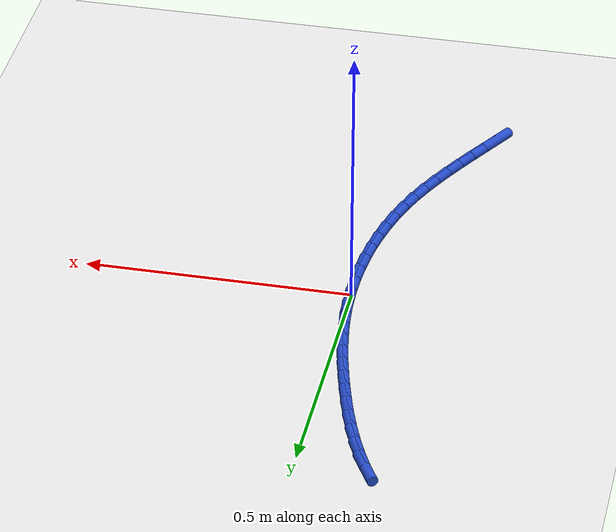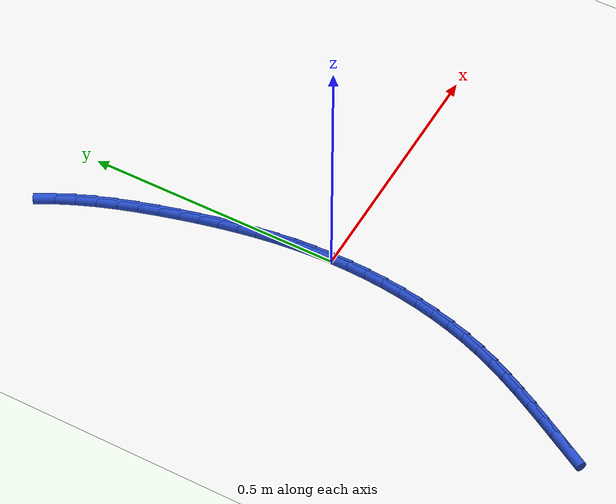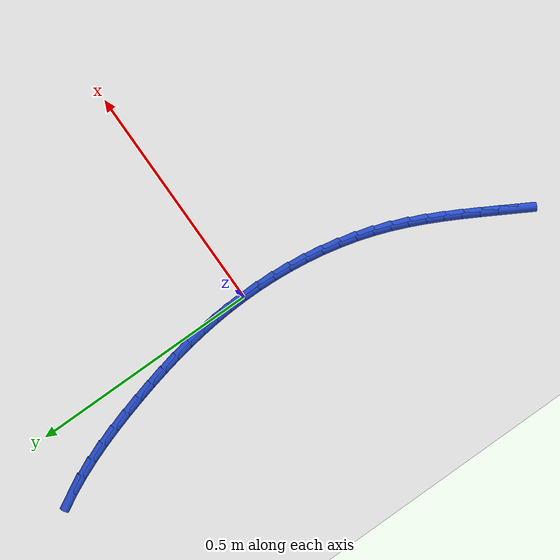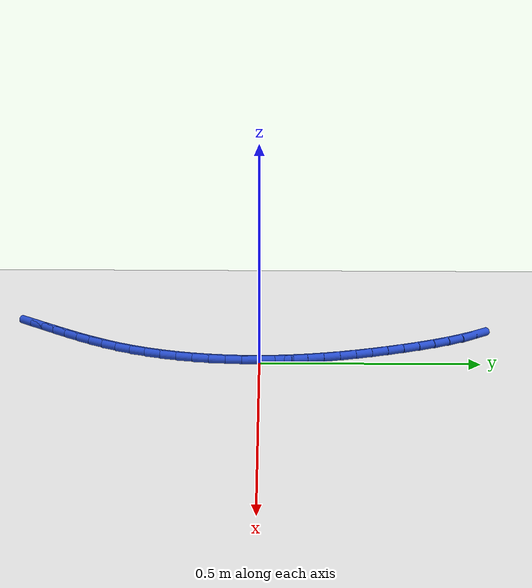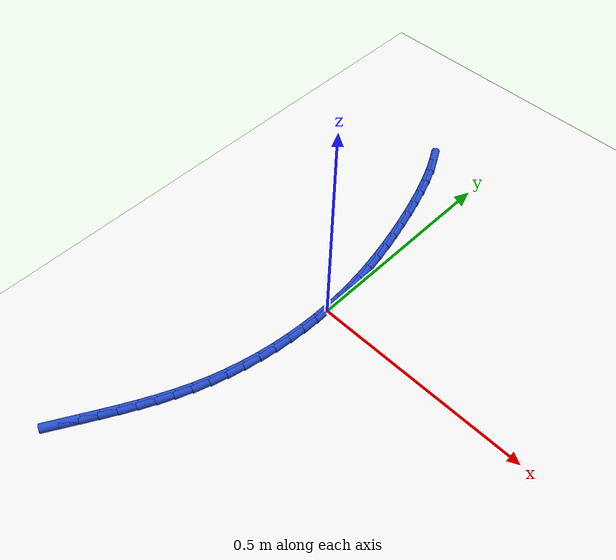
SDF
<sdf version="1.6">
 <world name="default">
  <model name="ground_plane">
   <static>1</static>
   <link name="link">
    <collision name="collision">
     <geometry><plane><normal>0 0 1</normal><size>100 100</size></plane></geometry>
     <surface><friction><ode><mu>100</mu><mu2>50</mu2></ode></friction></surface>
    </collision>
    <visual name="visual">
     <cast_shadows>0</cast_shadows>
     <geometry><plane><normal>0 0 1</normal><size>100 100</size></plane></geometry>
     <material>
      <script><uri>file://media/materials/scripts/gazebo.material</uri><name>Gazebo/WhiteGlow</name></script>
     </material>
    </visual>
   </link>
  </model>
  <model name="line">
   <link name="link_0">
    <pose>2.0816681711721685e-17 -3.469446951953614e-17 0.01 0 1.57 -1.535175717402976</pose>
    <collision name="collision">
     <geometry><cylinder><radius>0.01</radius><length>0.08</length></cylinder></geometry>
    </collision>
    <visual name="visual">
     <material>
      <script><name>Gazebo/Blue</name><uri>file://media/materials/scripts/gazebo.material</uri></script>
     </material>
     <geometry><cylinder><radius>0.01</radius><length>0.08</length></cylinder></geometry>
    </visual>
   </link>
   <link name="link_1">
    <pose>-0.0013238660518585024 0.03715001252713658 0.01 0 1.57 -1.4973385119002325</pose>
    <collision name="collision">
     <geometry><cylinder><radius>0.01</radius><length>0.08</length></cylinder></geometry>
    </collision>
    <visual name="visual">
     <material>
      <script><name>Gazebo/Blue</name><uri>file://media/materials/scripts/gazebo.material</uri></script>
     </material>
     <geometry><cylinder><radius>0.01</radius><length>0.08</length></cylinder></geometry>
    </visual>
   </link>
   <link name="link_2">
    <pose>-0.004042059239383102 0.07408688932368357 0.01 0 1.57 -1.4615958930958368</pose>
    <collision name="collision">
     <geometry><cylinder><radius>0.01</radius><length>0.08</length></cylinder></geometry>
    </collision>
    <visual name="visual">
     <material>
      <script><name>Gazebo/Blue</name><uri>file://media/materials/scripts/gazebo.material</uri></script>
     </material>
     <geometry><cylinder><radius>0.01</radius><length>0.08</length></cylinder></geometry>
    </visual>
   </link>
   <link name="link_3">
    <pose>-0.008076136931947968 0.11088188813671723 0.01 0 1.57 -1.4282274077855395</pose>
    <collision name="collision">
     <geometry><cylinder><radius>0.01</radius><length>0.08</length></cylinder></geometry>
    </collision>
    <visual name="visual">
     <material>
      <script><name>Gazebo/Blue</name><uri>file://media/materials/scripts/gazebo.material</uri></script>
     </material>
     <geometry><cylinder><radius>0.01</radius><length>0.08</length></cylinder></geometry>
    </visual>
   </link>
   <link name="link_4">
    <pose>-0.01334765649892731 0.14760626671331398 0.01 0 1.57 -1.397454465860084</pose>
    <collision name="collision">
     <geometry><cylinder><radius>0.01</radius><length>0.08</length></cylinder></geometry>
    </collision>
    <visual name="visual">
     <material>
      <script><name>Gazebo/Blue</name><uri>file://media/materials/scripts/gazebo.material</uri></script>
     </material>
     <geometry><cylinder><radius>0.01</radius><length>0.08</length></cylinder></geometry>
    </visual>
   </link>
   <link name="link_5">
    <pose>-0.01977817530969532 0.18433128280055017 0.01 0 1.57 -1.3694400405301053</pose>
    <collision name="collision">
     <geometry><cylinder><radius>0.01</radius><length>0.08</length></cylinder></geometry>
    </collision>
    <visual name="visual">
     <material>
      <script><name>Gazebo/Blue</name><uri>file://media/materials/scripts/gazebo.material</uri></script>
     </material>
     <geometry><cylinder><radius>0.01</radius><length>0.08</length></cylinder></geometry>
    </visual>
   </link>
   <link name="link_6">
    <pose>-0.027289250733626223 0.22112819414550225 0.01 0 1.57 -1.344291552297304</pose>
    <collision name="collision">
     <geometry><cylinder><radius>0.01</radius><length>0.08</length></cylinder></geometry>
    </collision>
    <visual name="visual">
     <material>
      <script><name>Gazebo/Blue</name><uri>file://media/materials/scripts/gazebo.material</uri></script>
     </material>
     <geometry><cylinder><radius>0.01</radius><length>0.08</length></cylinder></geometry>
    </visual>
   </link>
   <link name="link_7">
    <pose>-0.0358024401400942 0.25806825849524656 0.01 0 1.57 -1.3220660199620342</pose>
    <collision name="collision">
     <geometry><cylinder><radius>0.01</radius><length>0.08</length></cylinder></geometry>
    </collision>
    <visual name="visual">
     <material>
      <script><name>Gazebo/Blue</name><uri>file://media/materials/scripts/gazebo.material</uri></script>
     </material>
     <geometry><cylinder><radius>0.01</radius><length>0.08</length></cylinder></geometry>
    </visual>
   </link>
   <link name="link_8">
    <pose>-0.04523930089847343 0.2952227335968594 0.01 0 1.57 -1.3024077015015403</pose>
    <collision name="collision">
     <geometry><cylinder><radius>0.01</radius><length>0.08</length></cylinder></geometry>
    </collision>
    <visual name="visual">
     <material>
      <script><name>Gazebo/Blue</name><uri>file://media/materials/scripts/gazebo.material</uri></script>
     </material>
     <geometry><cylinder><radius>0.01</radius><length>0.08</length></cylinder></geometry>
    </visual>
   </link>
   <link name="link_9">
    <pose>-0.055532059470506975 0.33264766549137953 0.01 0 1.57 -1.2803683684279992</pose>
    <collision name="collision">
     <geometry><cylinder><radius>0.01</radius><length>0.08</length></cylinder></geometry>
    </collision>
    <visual name="visual">
     <material>
      <script><name>Gazebo/Blue</name><uri>file://media/materials/scripts/gazebo.material</uri></script>
     </material>
     <geometry><cylinder><radius>0.01</radius><length>0.08</length></cylinder></geometry>
    </visual>
   </link>
   <link name="link_10">
    <pose>-0.06675474178443426 0.3701969263398103 0.01 0 1.57 -1.252274470634638</pose>
    <collision name="collision">
     <geometry><cylinder><radius>0.01</radius><length>0.08</length></cylinder></geometry>
    </collision>
    <visual name="visual">
     <material>
      <script><name>Gazebo/Blue</name><uri>file://media/materials/scripts/gazebo.material</uri></script>
     </material>
     <geometry><cylinder><radius>0.01</radius><length>0.08</length></cylinder></geometry>
    </visual>
   </link>
   <link name="link_11">
    <pose>-0.07908207017894514 0.4075808180591378 0.01 0 1.57 -1.217695955242727</pose>
    <collision name="collision">
     <geometry><cylinder><radius>0.01</radius><length>0.08</length></cylinder></geometry>
    </collision>
    <visual name="visual">
     <material>
      <script><name>Gazebo/Blue</name><uri>file://media/materials/scripts/gazebo.material</uri></script>
     </material>
     <geometry><cylinder><radius>0.01</radius><length>0.08</length></cylinder></geometry>
    </visual>
   </link>
   <link name="link_12">
    <pose>-0.09269091233070037 0.4445065838009506 0.01 0 1.57 -1.1761381614254764</pose>
    <collision name="collision">
     <geometry><cylinder><radius>0.01</radius><length>0.08</length></cylinder></geometry>
    </collision>
    <visual name="visual">
     <material>
      <script><name>Gazebo/Blue</name><uri>file://media/materials/scripts/gazebo.material</uri></script>
     </material>
     <geometry><cylinder><radius>0.01</radius><length>0.08</length></cylinder></geometry>
    </visual>
   </link>
   <link name="link_13">
    <pose>-0.10775813591636066 0.48068146671683687 0.01 0 1.57 -1.1269966102576379</pose>
    <collision name="collision">
     <geometry><cylinder><radius>0.01</radius><length>0.08</length></cylinder></geometry>
    </collision>
    <visual name="visual">
     <material>
      <script><name>Gazebo/Blue</name><uri>file://media/materials/scripts/gazebo.material</uri></script>
     </material>
     <geometry><cylinder><radius>0.01</radius><length>0.08</length></cylinder></geometry>
    </visual>
   </link>
   <link name="link_14">
    <pose>-0.12446060861258675 0.5158127099583852 0.01 0 1.57 -1.0696034037154103</pose>
    <collision name="collision">
     <geometry><cylinder><radius>0.01</radius><length>0.08</length></cylinder></geometry>
    </collision>
    <visual name="visual">
     <material>
      <script><name>Gazebo/Blue</name><uri>file://media/materials/scripts/gazebo.material</uri></script>
     </material>
     <geometry><cylinder><radius>0.01</radius><length>0.08</length></cylinder></geometry>
    </visual>
   </link>
   <link name="link_184">
    <pose>-0.17710182312837294 -0.5632530114814381 0.01 0 1.57 1.0520196077368658</pose>
    <collision name="collision">
     <geometry><cylinder><radius>0.01</radius><length>0.08</length></cylinder></geometry>
    </collision>
    <visual name="visual">
     <material>
      <script><name>Gazebo/Blue</name><uri>file://media/materials/scripts/gazebo.material</uri></script>
     </material>
     <geometry><cylinder><radius>0.01</radius><length>0.08</length></cylinder></geometry>
    </visual>
   </link>
   <link name="link_185">
    <pose>-0.15829535656255286 -0.5303134544724337 0.01 0 1.57 1.0540630838839782</pose>
    <collision name="collision">
     <geometry><cylinder><radius>0.01</radius><length>0.08</length></cylinder></geometry>
    </collision>
    <visual name="visual">
     <material>
      <script><name>Gazebo/Blue</name><uri>file://media/materials/scripts/gazebo.material</uri></script>
     </material>
     <geometry><cylinder><radius>0.01</radius><length>0.08</length></cylinder></geometry>
    </visual>
   </link>
   <link name="link_186">
    <pose>-0.13967276700725248 -0.49754060430856206 0.01 0 1.57 1.0633290260461346</pose>
    <collision name="collision">
     <geometry><cylinder><radius>0.01</radius><length>0.08</length></cylinder></geometry>
    </collision>
    <visual name="visual">
     <material>
      <script><name>Gazebo/Blue</name><uri>file://media/materials/scripts/gazebo.material</uri></script>
     </material>
     <geometry><cylinder><radius>0.01</radius><length>0.08</length></cylinder></geometry>
    </visual>
   </link>
   <link name="link_187">
    <pose>-0.1214592902617887 -0.46478480762512275 0.01 0 1.57 1.079924510226308</pose>
    <collision name="collision">
     <geometry><cylinder><radius>0.01</radius><length>0.08</length></cylinder></geometry>
    </collision>
    <visual name="visual">
     <material>
      <script><name>Gazebo/Blue</name><uri>file://media/materials/scripts/gazebo.material</uri></script>
     </material>
     <geometry><cylinder><radius>0.01</radius><length>0.08</length></cylinder></geometry>
    </visual>
   </link>
   <link name="link_188">
    <pose>-0.10388016212547817 -0.4318964110574149 0.01 0 1.57 1.1039169097174117</pose>
    <collision name="collision">
     <geometry><cylinder><radius>0.01</radius><length>0.08</length></cylinder></geometry>
    </collision>
    <visual name="visual">
     <material>
      <script><name>Gazebo/Blue</name><uri>file://media/materials/scripts/gazebo.material</uri></script>
     </material>
     <geometry><cylinder><radius>0.01</radius><length>0.08</length></cylinder></geometry>
    </visual>
   </link>
   <link name="link_189">
    <pose>-0.08716061839763761 -0.398725761240738 0.01 0 1.57 1.1353053740433137</pose>
    <collision name="collision">
     <geometry><cylinder><radius>0.01</radius><length>0.08</length></cylinder></geometry>
    </collision>
    <visual name="visual">
     <material>
      <script><name>Gazebo/Blue</name><uri>file://media/materials/scripts/gazebo.material</uri></script>
     </material>
     <geometry><cylinder><radius>0.01</radius><length>0.08</length></cylinder></geometry>
    </visual>
   </link>
   <link name="link_190">
    <pose>-0.07152589487758385 -0.3651232048103914 0.01 0 1.57 1.1739807975655878</pose>
    <collision name="collision">
     <geometry><cylinder><radius>0.01</radius><length>0.08</length></cylinder></geometry>
    </collision>
    <visual name="visual">
     <material>
      <script><name>Gazebo/Blue</name><uri>file://media/materials/scripts/gazebo.material</uri></script>
     </material>
     <geometry><cylinder><radius>0.01</radius><length>0.08</length></cylinder></geometry>
    </visual>
   </link>
   <link name="link_191">
    <pose>-0.0572012273646336 -0.3309390884016746 0.01 0 1.57 1.2196026281087664</pose>
    <collision name="collision">
     <geometry><cylinder><radius>0.01</radius><length>0.08</length></cylinder></geometry>
    </collision>
    <visual name="visual">
     <material>
      <script><name>Gazebo/Blue</name><uri>file://media/materials/scripts/gazebo.material</uri></script>
     </material>
     <geometry><cylinder><radius>0.01</radius><length>0.08</length></cylinder></geometry>
    </visual>
   </link>
   <link name="link_192">
    <pose>-0.04440975366476254 -0.29602613057623284 0.01 0 1.57 1.2683119038665052</pose>
    <collision name="collision">
     <geometry><cylinder><radius>0.01</radius><length>0.08</length></cylinder></geometry>
    </collision>
    <visual name="visual">
     <material>
      <script><name>Gazebo/Blue</name><uri>file://media/materials/scripts/gazebo.material</uri></script>
     </material>
     <geometry><cylinder><radius>0.01</radius><length>0.08</length></cylinder></geometry>
    </visual>
   </link>
   <link name="link_193">
    <pose>-0.033276137403423854 -0.2603483817567424 0.01 0 1.57 1.3152392758018003</pose>
    <collision name="collision">
     <geometry><cylinder><radius>0.01</radius><length>0.08</length></cylinder></geometry>
    </collision>
    <visual name="visual">
     <material>
      <script><name>Gazebo/Blue</name><uri>file://media/materials/scripts/gazebo.material</uri></script>
     </material>
     <geometry><cylinder><radius>0.01</radius><length>0.08</length></cylinder></geometry>
    </visual>
   </link>
   <link name="link_194">
    <pose>-0.023786372056865766 -0.22402666854517003 0.01 0 1.57 1.3602856303607034</pose>
    <collision name="collision">
     <geometry><cylinder><radius>0.01</radius><length>0.08</length></cylinder></geometry>
    </collision>
    <visual name="visual">
     <material>
      <script><name>Gazebo/Blue</name><uri>file://media/materials/scripts/gazebo.material</uri></script>
     </material>
     <geometry><cylinder><radius>0.01</radius><length>0.08</length></cylinder></geometry>
    </visual>
   </link>
   <link name="link_195">
    <pose>-0.01591601746101845 -0.1871936134943369 0.01 0 1.57 1.40372851718239</pose>
    <collision name="collision">
     <geometry><cylinder><radius>0.01</radius><length>0.08</length></cylinder></geometry>
    </collision>
    <visual name="visual">
     <material>
      <script><name>Gazebo/Blue</name><uri>file://media/materials/scripts/gazebo.material</uri></script>
     </material>
     <geometry><cylinder><radius>0.01</radius><length>0.08</length></cylinder></geometry>
    </visual>
   </link>
   <link name="link_196">
    <pose>-0.0096406334518121 -0.14998183915706417 0.01 0 1.57 1.4458467963356698</pose>
    <collision name="collision">
     <geometry><cylinder><radius>0.01</radius><length>0.08</length></cylinder></geometry>
    </collision>
    <visual name="visual">
     <material>
      <script><name>Gazebo/Blue</name><uri>file://media/materials/scripts/gazebo.material</uri></script>
     </material>
     <geometry><cylinder><radius>0.01</radius><length>0.08</length></cylinder></geometry>
    </visual>
   </link>
   <link name="link_197">
    <pose>-0.004935779865176898 -0.11252396808617303 0.01 0 1.57 1.4869198445411091</pose>
    <collision name="collision">
     <geometry><cylinder><radius>0.01</radius><length>0.08</length></cylinder></geometry>
    </collision>
    <visual name="visual">
     <material>
      <script><name>Gazebo/Blue</name><uri>file://media/materials/scripts/gazebo.material</uri></script>
     </material>
     <geometry><cylinder><radius>0.01</radius><length>0.08</length></cylinder></geometry>
    </visual>
   </link>
   <link name="link_198">
    <pose>-0.0017770165370430179 -0.07495262283448444 0.01 0 1.57 1.5272282430480162</pose>
    <collision name="collision">
     <geometry><cylinder><radius>0.01</radius><length>0.08</length></cylinder></geometry>
    </collision>
    <visual name="visual">
     <material>
      <script><name>Gazebo/Blue</name><uri>file://media/materials/scripts/gazebo.material</uri></script>
     </material>
     <geometry><cylinder><radius>0.01</radius><length>0.08</length></cylinder></geometry>
    </visual>
   </link>
   <link name="link_199">
    <pose>-0.00013990330334064972 -0.03740042595481968 0.01 0 1.57 1.5670556568097065</pose>
    <collision name="collision">
     <geometry><cylinder><radius>0.01</radius><length>0.08</length></cylinder></geometry>
    </collision>
    <visual name="visual">
     <material>
      <script><name>Gazebo/Blue</name><uri>file://media/materials/scripts/gazebo.material</uri></script>
     </material>
     <geometry><cylinder><radius>0.01</radius><length>0.08</length></cylinder></geometry>
    </visual>
   </link>
   <link name="link_200">
    <pose>2.688821387764051e-17 1.3877787807814457e-16 0.01 0 1.57 -1.534900950364272</pose>
    <collision name="collision">
     <geometry><cylinder><radius>0.01</radius><length>0.08</length></cylinder></geometry>
    </collision>
    <visual name="visual">
     <material>
      <script><name>Gazebo/Blue</name><uri>file://media/materials/scripts/gazebo.material</uri></script>
     </material>
     <geometry><cylinder><radius>0.01</radius><length>0.08</length></cylinder></geometry>
    </visual>
   </link>
   <link name="link_201">
    <pose>-0.0013328664629512158 0.03711603247715472 0.01 0 1.57 -1.5349009503642725</pose>
    <collision name="collision">
     <geometry><cylinder><radius>0.01</radius><length>0.08</length></cylinder></geometry>
    </collision>
    <visual name="visual">
     <material>
      <script><name>Gazebo/Blue</name><uri>file://media/materials/scripts/gazebo.material</uri></script>
     </material>
     <geometry><cylinder><radius>0.01</radius><length>0.08</length></cylinder></geometry>
    </visual>
   </link>
  </model>
 </world>
</sdf>
